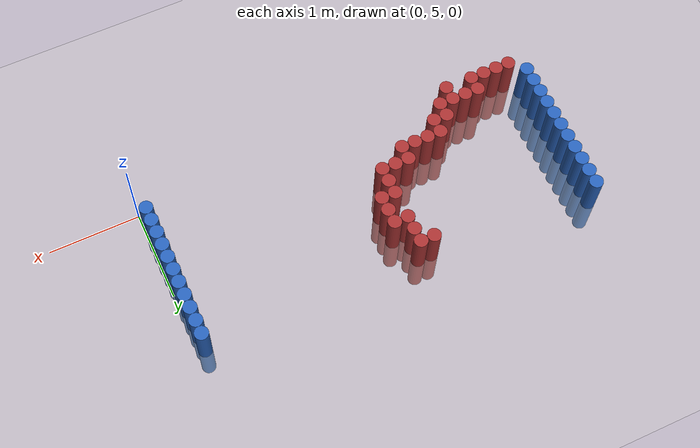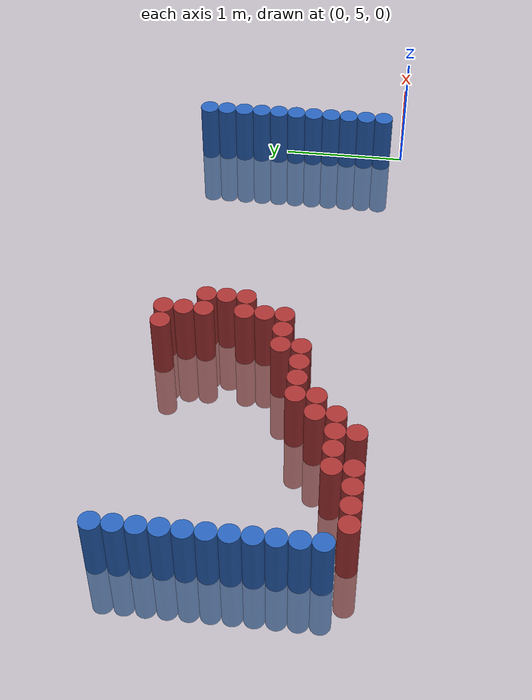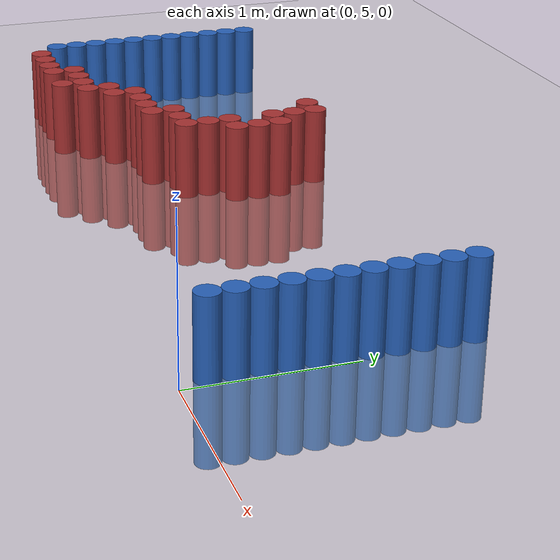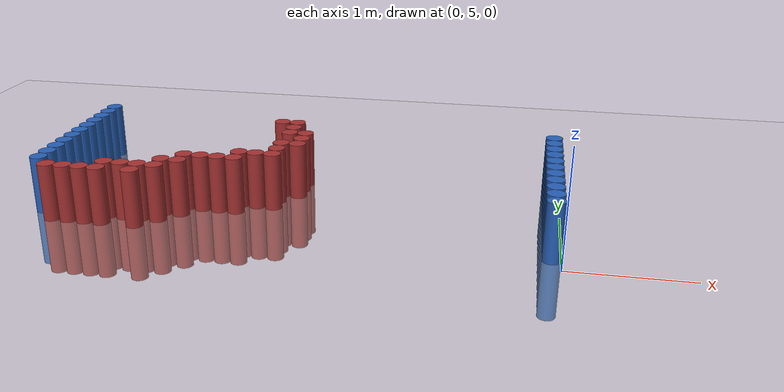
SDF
<sdf version="1.6">
 <world name="default">
  <model name="ground_plane">
   <static>1</static>
   <link name="link">
    <collision name="collision">
     <geometry><plane><normal>0 0 1</normal><size>100 100</size></plane></geometry>
     <surface><friction><ode><mu>100</mu><mu2>50</mu2></ode></friction></surface>
    </collision>
    <visual name="visual">
     <cast_shadows>0</cast_shadows>
     <geometry><plane><normal>0 0 1</normal><size>100 100</size></plane></geometry>
     <material>
      <script><uri>file://media/materials/scripts/gazebo.material</uri><name>Gazebo/Grey</name></script>
     </material>
    </visual>
   </link>
  </model>
  <model name="unit_cylinder_97">
   <static>1</static>
   <pose>-4.425000 5.325000 0.000000 0.000000 0.000000 0.000000</pose>
   <link name="link">
    <inertial>
     <mass>1</mass>
     <inertia><ixx>0.145833</ixx><ixy>0</ixy><ixz>0</ixz><iyy>0.145833</iyy><iyz>0</iyz><izz>0.125</izz></inertia>
    </inertial>
    <collision name="collision">
     <geometry><cylinder><radius>0.075000</radius><length>1</length></cylinder></geometry>
    </collision>
    <visual name="visual">
     <geometry><cylinder><radius>0.075000</radius><length>1</length></cylinder></geometry>
     <material>
      <ambient>0.152000 0.379000 0.720000 1</ambient>
      <diffuse>0.152000 0.379000 0.720000 1</diffuse>
     </material>
     <material>
      <script><name>Gazebo/Grey</name><uri>file://media/materials/scripts/gazebo.material</uri></script>
     </material>
    </visual>
   </link>
  </model>
  <model name="unit_cylinder_98">
   <static>1</static>
   <pose>-4.425000 5.475000 0.000000 0.000000 0.000000 0.000000</pose>
   <link name="link">
    <inertial>
     <mass>1</mass>
     <inertia><ixx>0.145833</ixx><ixy>0</ixy><ixz>0</ixz><iyy>0.145833</iyy><iyz>0</iyz><izz>0.125</izz></inertia>
    </inertial>
    <collision name="collision">
     <geometry><cylinder><radius>0.075000</radius><length>1</length></cylinder></geometry>
    </collision>
    <visual name="visual">
     <geometry><cylinder><radius>0.075000</radius><length>1</length></cylinder></geometry>
     <material>
      <ambient>0.152000 0.379000 0.720000 1</ambient>
      <diffuse>0.152000 0.379000 0.720000 1</diffuse>
     </material>
     <material>
      <script><name>Gazebo/Grey</name><uri>file://media/materials/scripts/gazebo.material</uri></script>
     </material>
    </visual>
   </link>
  </model>
  <model name="unit_cylinder_99">
   <static>1</static>
   <pose>-4.425000 5.625000 0.000000 0.000000 0.000000 0.000000</pose>
   <link name="link">
    <inertial>
     <mass>1</mass>
     <inertia><ixx>0.145833</ixx><ixy>0</ixy><ixz>0</ixz><iyy>0.145833</iyy><iyz>0</iyz><izz>0.125</izz></inertia>
    </inertial>
    <collision name="collision">
     <geometry><cylinder><radius>0.075000</radius><length>1</length></cylinder></geometry>
    </collision>
    <visual name="visual">
     <geometry><cylinder><radius>0.075000</radius><length>1</length></cylinder></geometry>
     <material>
      <ambient>0.152000 0.379000 0.720000 1</ambient>
      <diffuse>0.152000 0.379000 0.720000 1</diffuse>
     </material>
     <material>
      <script><name>Gazebo/Grey</name><uri>file://media/materials/scripts/gazebo.material</uri></script>
     </material>
    </visual>
   </link>
  </model>
  <model name="unit_cylinder_100">
   <static>1</static>
   <pose>-4.425000 5.775000 0.000000 0.000000 0.000000 0.000000</pose>
   <link name="link">
    <inertial>
     <mass>1</mass>
     <inertia><ixx>0.145833</ixx><ixy>0</ixy><ixz>0</ixz><iyy>0.145833</iyy><iyz>0</iyz><izz>0.125</izz></inertia>
    </inertial>
    <collision name="collision">
     <geometry><cylinder><radius>0.075000</radius><length>1</length></cylinder></geometry>
    </collision>
    <visual name="visual">
     <geometry><cylinder><radius>0.075000</radius><length>1</length></cylinder></geometry>
     <material>
      <ambient>0.152000 0.379000 0.720000 1</ambient>
      <diffuse>0.152000 0.379000 0.720000 1</diffuse>
     </material>
     <material>
      <script><name>Gazebo/Grey</name><uri>file://media/materials/scripts/gazebo.material</uri></script>
     </material>
    </visual>
   </link>
  </model>
  <model name="unit_cylinder_101">
   <static>1</static>
   <pose>-4.425000 5.925000 0.000000 0.000000 0.000000 0.000000</pose>
   <link name="link">
    <inertial>
     <mass>1</mass>
     <inertia><ixx>0.145833</ixx><ixy>0</ixy><ixz>0</ixz><iyy>0.145833</iyy><iyz>0</iyz><izz>0.125</izz></inertia>
    </inertial>
    <collision name="collision">
     <geometry><cylinder><radius>0.075000</radius><length>1</length></cylinder></geometry>
    </collision>
    <visual name="visual">
     <geometry><cylinder><radius>0.075000</radius><length>1</length></cylinder></geometry>
     <material>
      <ambient>0.152000 0.379000 0.720000 1</ambient>
      <diffuse>0.152000 0.379000 0.720000 1</diffuse>
     </material>
     <material>
      <script><name>Gazebo/Grey</name><uri>file://media/materials/scripts/gazebo.material</uri></script>
     </material>
    </visual>
   </link>
  </model>
  <model name="unit_cylinder_102">
   <static>1</static>
   <pose>-4.425000 6.075000 0.000000 0.000000 0.000000 0.000000</pose>
   <link name="link">
    <inertial>
     <mass>1</mass>
     <inertia><ixx>0.145833</ixx><ixy>0</ixy><ixz>0</ixz><iyy>0.145833</iyy><iyz>0</iyz><izz>0.125</izz></inertia>
    </inertial>
    <collision name="collision">
     <geometry><cylinder><radius>0.075000</radius><length>1</length></cylinder></geometry>
    </collision>
    <visual name="visual">
     <geometry><cylinder><radius>0.075000</radius><length>1</length></cylinder></geometry>
     <material>
      <ambient>0.152000 0.379000 0.720000 1</ambient>
      <diffuse>0.152000 0.379000 0.720000 1</diffuse>
     </material>
     <material>
      <script><name>Gazebo/Grey</name><uri>file://media/materials/scripts/gazebo.material</uri></script>
     </material>
    </visual>
   </link>
  </model>
  <model name="unit_cylinder_103">
   <static>1</static>
   <pose>-4.425000 6.225000 0.000000 0.000000 0.000000 0.000000</pose>
   <link name="link">
    <inertial>
     <mass>1</mass>
     <inertia><ixx>0.145833</ixx><ixy>0</ixy><ixz>0</ixz><iyy>0.145833</iyy><iyz>0</iyz><izz>0.125</izz></inertia>
    </inertial>
    <collision name="collision">
     <geometry><cylinder><radius>0.075000</radius><length>1</length></cylinder></geometry>
    </collision>
    <visual name="visual">
     <geometry><cylinder><radius>0.075000</radius><length>1</length></cylinder></geometry>
     <material>
      <ambient>0.152000 0.379000 0.720000 1</ambient>
      <diffuse>0.152000 0.379000 0.720000 1</diffuse>
     </material>
     <material>
      <script><name>Gazebo/Grey</name><uri>file://media/materials/scripts/gazebo.material</uri></script>
     </material>
    </visual>
   </link>
  </model>
  <model name="unit_cylinder_104">
   <static>1</static>
   <pose>-4.425000 6.375000 0.000000 0.000000 0.000000 0.000000</pose>
   <link name="link">
    <inertial>
     <mass>1</mass>
     <inertia><ixx>0.145833</ixx><ixy>0</ixy><ixz>0</ixz><iyy>0.145833</iyy><iyz>0</iyz><izz>0.125</izz></inertia>
    </inertial>
    <collision name="collision">
     <geometry><cylinder><radius>0.075000</radius><length>1</length></cylinder></geometry>
    </collision>
    <visual name="visual">
     <geometry><cylinder><radius>0.075000</radius><length>1</length></cylinder></geometry>
     <material>
      <ambient>0.152000 0.379000 0.720000 1</ambient>
      <diffuse>0.152000 0.379000 0.720000 1</diffuse>
     </material>
     <material>
      <script><name>Gazebo/Grey</name><uri>file://media/materials/scripts/gazebo.material</uri></script>
     </material>
    </visual>
   </link>
  </model>
  <model name="unit_cylinder_105">
   <static>1</static>
   <pose>-4.425000 6.525000 0.000000 0.000000 0.000000 0.000000</pose>
   <link name="link">
    <inertial>
     <mass>1</mass>
     <inertia><ixx>0.145833</ixx><ixy>0</ixy><ixz>0</ixz><iyy>0.145833</iyy><iyz>0</iyz><izz>0.125</izz></inertia>
    </inertial>
    <collision name="collision">
     <geometry><cylinder><radius>0.075000</radius><length>1</length></cylinder></geometry>
    </collision>
    <visual name="visual">
     <geometry><cylinder><radius>0.075000</radius><length>1</length></cylinder></geometry>
     <material>
      <ambient>0.152000 0.379000 0.720000 1</ambient>
      <diffuse>0.152000 0.379000 0.720000 1</diffuse>
     </material>
     <material>
      <script><name>Gazebo/Grey</name><uri>file://media/materials/scripts/gazebo.material</uri></script>
     </material>
    </visual>
   </link>
  </model>
  <model name="unit_cylinder_106">
   <static>1</static>
   <pose>-4.425000 6.675000 0.000000 0.000000 0.000000 0.000000</pose>
   <link name="link">
    <inertial>
     <mass>1</mass>
     <inertia><ixx>0.145833</ixx><ixy>0</ixy><ixz>0</ixz><iyy>0.145833</iyy><iyz>0</iyz><izz>0.125</izz></inertia>
    </inertial>
    <collision name="collision">
     <geometry><cylinder><radius>0.075000</radius><length>1</length></cylinder></geometry>
    </collision>
    <visual name="visual">
     <geometry><cylinder><radius>0.075000</radius><length>1</length></cylinder></geometry>
     <material>
      <ambient>0.152000 0.379000 0.720000 1</ambient>
      <diffuse>0.152000 0.379000 0.720000 1</diffuse>
     </material>
     <material>
      <script><name>Gazebo/Grey</name><uri>file://media/materials/scripts/gazebo.material</uri></script>
     </material>
    </visual>
   </link>
  </model>
  <model name="unit_cylinder_107">
   <static>1</static>
   <pose>-4.425000 6.825000 0.000000 0.000000 0.000000 0.000000</pose>
   <link name="link">
    <inertial>
     <mass>1</mass>
     <inertia><ixx>0.145833</ixx><ixy>0</ixy><ixz>0</ixz><iyy>0.145833</iyy><iyz>0</iyz><izz>0.125</izz></inertia>
    </inertial>
    <collision name="collision">
     <geometry><cylinder><radius>0.075000</radius><length>1</length></cylinder></geometry>
    </collision>
    <visual name="visual">
     <geometry><cylinder><radius>0.075000</radius><length>1</length></cylinder></geometry>
     <material>
      <ambient>0.152000 0.379000 0.720000 1</ambient>
      <diffuse>0.152000 0.379000 0.720000 1</diffuse>
     </material>
     <material>
      <script><name>Gazebo/Grey</name><uri>file://media/materials/scripts/gazebo.material</uri></script>
     </material>
    </visual>
   </link>
  </model>
  <model name="unit_cylinder_126">
   <static>1</static>
   <pose>-4.275000 5.175000 0.000000 0.000000 0.000000 0.000000</pose>
   <link name="link">
    <inertial>
     <mass>1</mass>
     <inertia><ixx>0.145833</ixx><ixy>0</ixy><ixz>0</ixz><iyy>0.145833</iyy><iyz>0</iyz><izz>0.125</izz></inertia>
    </inertial>
    <collision name="collision">
     <geometry><cylinder><radius>0.075000</radius><length>1</length></cylinder></geometry>
    </collision>
    <visual name="visual">
     <geometry><cylinder><radius>0.075000</radius><length>1</length></cylinder></geometry>
     <material>
      <ambient>0.648000 0.192000 0.192000 1</ambient>
      <diffuse>0.648000 0.192000 0.192000 1</diffuse>
     </material>
     <material>
      <script><name>Gazebo/Grey</name><uri>file://media/materials/scripts/gazebo.material</uri></script>
     </material>
    </visual>
   </link>
  </model>
  <model name="unit_cylinder_128">
   <static>1</static>
   <pose>-4.125000 5.175000 0.000000 0.000000 0.000000 0.000000</pose>
   <link name="link">
    <inertial>
     <mass>1</mass>
     <inertia><ixx>0.145833</ixx><ixy>0</ixy><ixz>0</ixz><iyy>0.145833</iyy><iyz>0</iyz><izz>0.125</izz></inertia>
    </inertial>
    <collision name="collision">
     <geometry><cylinder><radius>0.075000</radius><length>1</length></cylinder></geometry>
    </collision>
    <visual name="visual">
     <geometry><cylinder><radius>0.075000</radius><length>1</length></cylinder></geometry>
     <material>
      <ambient>0.648000 0.192000 0.192000 1</ambient>
      <diffuse>0.648000 0.192000 0.192000 1</diffuse>
     </material>
     <material>
      <script><name>Gazebo/Grey</name><uri>file://media/materials/scripts/gazebo.material</uri></script>
     </material>
    </visual>
   </link>
  </model>
  <model name="unit_cylinder_131">
   <static>1</static>
   <pose>-3.975000 5.175000 0.000000 0.000000 0.000000 0.000000</pose>
   <link name="link">
    <inertial>
     <mass>1</mass>
     <inertia><ixx>0.145833</ixx><ixy>0</ixy><ixz>0</ixz><iyy>0.145833</iyy><iyz>0</iyz><izz>0.125</izz></inertia>
    </inertial>
    <collision name="collision">
     <geometry><cylinder><radius>0.075000</radius><length>1</length></cylinder></geometry>
    </collision>
    <visual name="visual">
     <geometry><cylinder><radius>0.075000</radius><length>1</length></cylinder></geometry>
     <material>
      <ambient>0.648000 0.192000 0.192000 1</ambient>
      <diffuse>0.648000 0.192000 0.192000 1</diffuse>
     </material>
     <material>
      <script><name>Gazebo/Grey</name><uri>file://media/materials/scripts/gazebo.material</uri></script>
     </material>
    </visual>
   </link>
  </model>
  <model name="unit_cylinder_133">
   <static>1</static>
   <pose>-3.825000 5.175000 0.000000 0.000000 0.000000 0.000000</pose>
   <link name="link">
    <inertial>
     <mass>1</mass>
     <inertia><ixx>0.145833</ixx><ixy>0</ixy><ixz>0</ixz><iyy>0.145833</iyy><iyz>0</iyz><izz>0.125</izz></inertia>
    </inertial>
    <collision name="collision">
     <geometry><cylinder><radius>0.075000</radius><length>1</length></cylinder></geometry>
    </collision>
    <visual name="visual">
     <geometry><cylinder><radius>0.075000</radius><length>1</length></cylinder></geometry>
     <material>
      <ambient>0.648000 0.192000 0.192000 1</ambient>
      <diffuse>0.648000 0.192000 0.192000 1</diffuse>
     </material>
     <material>
      <script><name>Gazebo/Grey</name><uri>file://media/materials/scripts/gazebo.material</uri></script>
     </material>
    </visual>
   </link>
  </model>
  <model name="unit_cylinder_134">
   <static>1</static>
   <pose>-3.825000 5.325000 0.000000 0.000000 0.000000 0.000000</pose>
   <link name="link">
    <inertial>
     <mass>1</mass>
     <inertia><ixx>0.145833</ixx><ixy>0</ixy><ixz>0</ixz><iyy>0.145833</iyy><iyz>0</iyz><izz>0.125</izz></inertia>
    </inertial>
    <collision name="collision">
     <geometry><cylinder><radius>0.075000</radius><length>1</length></cylinder></geometry>
    </collision>
    <visual name="visual">
     <geometry><cylinder><radius>0.075000</radius><length>1</length></cylinder></geometry>
     <material>
      <ambient>0.648000 0.192000 0.192000 1</ambient>
      <diffuse>0.648000 0.192000 0.192000 1</diffuse>
     </material>
     <material>
      <script><name>Gazebo/Grey</name><uri>file://media/materials/scripts/gazebo.material</uri></script>
     </material>
    </visual>
   </link>
  </model>
  <model name="unit_cylinder_137">
   <static>1</static>
   <pose>-3.675000 5.325000 0.000000 0.000000 0.000000 0.000000</pose>
   <link name="link">
    <inertial>
     <mass>1</mass>
     <inertia><ixx>0.145833</ixx><ixy>0</ixy><ixz>0</ixz><iyy>0.145833</iyy><iyz>0</iyz><izz>0.125</izz></inertia>
    </inertial>
    <collision name="collision">
     <geometry><cylinder><radius>0.075000</radius><length>1</length></cylinder></geometry>
    </collision>
    <visual name="visual">
     <geometry><cylinder><radius>0.075000</radius><length>1</length></cylinder></geometry>
     <material>
      <ambient>0.648000 0.192000 0.192000 1</ambient>
      <diffuse>0.648000 0.192000 0.192000 1</diffuse>
     </material>
     <material>
      <script><name>Gazebo/Grey</name><uri>file://media/materials/scripts/gazebo.material</uri></script>
     </material>
    </visual>
   </link>
  </model>
  <model name="unit_cylinder_140">
   <static>1</static>
   <pose>-3.525000 5.175000 0.000000 0.000000 0.000000 0.000000</pose>
   <link name="link">
    <inertial>
     <mass>1</mass>
     <inertia><ixx>0.145833</ixx><ixy>0</ixy><ixz>0</ixz><iyy>0.145833</iyy><iyz>0</iyz><izz>0.125</izz></inertia>
    </inertial>
    <collision name="collision">
     <geometry><cylinder><radius>0.075000</radius><length>1</length></cylinder></geometry>
    </collision>
    <visual name="visual">
     <geometry><cylinder><radius>0.075000</radius><length>1</length></cylinder></geometry>
     <material>
      <ambient>0.648000 0.192000 0.192000 1</ambient>
      <diffuse>0.648000 0.192000 0.192000 1</diffuse>
     </material>
     <material>
      <script><name>Gazebo/Grey</name><uri>file://media/materials/scripts/gazebo.material</uri></script>
     </material>
    </visual>
   </link>
  </model>
  <model name="unit_cylinder_141">
   <static>1</static>
   <pose>-3.525000 5.325000 0.000000 0.000000 0.000000 0.000000</pose>
   <link name="link">
    <inertial>
     <mass>1</mass>
     <inertia><ixx>0.145833</ixx><ixy>0</ixy><ixz>0</ixz><iyy>0.145833</iyy><iyz>0</iyz><izz>0.125</izz></inertia>
    </inertial>
    <collision name="collision">
     <geometry><cylinder><radius>0.075000</radius><length>1</length></cylinder></geometry>
    </collision>
    <visual name="visual">
     <geometry><cylinder><radius>0.075000</radius><length>1</length></cylinder></geometry>
     <material>
      <ambient>0.648000 0.192000 0.192000 1</ambient>
      <diffuse>0.648000 0.192000 0.192000 1</diffuse>
     </material>
     <material>
      <script><name>Gazebo/Grey</name><uri>file://media/materials/scripts/gazebo.material</uri></script>
     </material>
    </visual>
   </link>
  </model>
  <model name="unit_cylinder_143">
   <static>1</static>
   <pose>-3.375000 5.325000 0.000000 0.000000 0.000000 0.000000</pose>
   <link name="link">
    <inertial>
     <mass>1</mass>
     <inertia><ixx>0.145833</ixx><ixy>0</ixy><ixz>0</ixz><iyy>0.145833</iyy><iyz>0</iyz><izz>0.125</izz></inertia>
    </inertial>
    <collision name="collision">
     <geometry><cylinder><radius>0.075000</radius><length>1</length></cylinder></geometry>
    </collision>
    <visual name="visual">
     <geometry><cylinder><radius>0.075000</radius><length>1</length></cylinder></geometry>
     <material>
      <ambient>0.648000 0.192000 0.192000 1</ambient>
      <diffuse>0.648000 0.192000 0.192000 1</diffuse>
     </material>
     <material>
      <script><name>Gazebo/Grey</name><uri>file://media/materials/scripts/gazebo.material</uri></script>
     </material>
    </visual>
   </link>
  </model>
  <model name="unit_cylinder_144">
   <static>1</static>
   <pose>-3.375000 5.475000 0.000000 0.000000 0.000000 0.000000</pose>
   <link name="link">
    <inertial>
     <mass>1</mass>
     <inertia><ixx>0.145833</ixx><ixy>0</ixy><ixz>0</ixz><iyy>0.145833</iyy><iyz>0</iyz><izz>0.125</izz></inertia>
    </inertial>
    <collision name="collision">
     <geometry><cylinder><radius>0.075000</radius><length>1</length></cylinder></geometry>
    </collision>
    <visual name="visual">
     <geometry><cylinder><radius>0.075000</radius><length>1</length></cylinder></geometry>
     <material>
      <ambient>0.648000 0.192000 0.192000 1</ambient>
      <diffuse>0.648000 0.192000 0.192000 1</diffuse>
     </material>
     <material>
      <script><name>Gazebo/Grey</name><uri>file://media/materials/scripts/gazebo.material</uri></script>
     </material>
    </visual>
   </link>
  </model>
  <model name="unit_cylinder_146">
   <static>1</static>
   <pose>-3.225000 5.475000 0.000000 0.000000 0.000000 0.000000</pose>
   <link name="link">
    <inertial>
     <mass>1</mass>
     <inertia><ixx>0.145833</ixx><ixy>0</ixy><ixz>0</ixz><iyy>0.145833</iyy><iyz>0</iyz><izz>0.125</izz></inertia>
    </inertial>
    <collision name="collision">
     <geometry><cylinder><radius>0.075000</radius><length>1</length></cylinder></geometry>
    </collision>
    <visual name="visual">
     <geometry><cylinder><radius>0.075000</radius><length>1</length></cylinder></geometry>
     <material>
      <ambient>0.648000 0.192000 0.192000 1</ambient>
      <diffuse>0.648000 0.192000 0.192000 1</diffuse>
     </material>
     <material>
      <script><name>Gazebo/Grey</name><uri>file://media/materials/scripts/gazebo.material</uri></script>
     </material>
    </visual>
   </link>
  </model>
  <model name="unit_cylinder_147">
   <static>1</static>
   <pose>-3.225000 5.625000 0.000000 0.000000 0.000000 0.000000</pose>
   <link name="link">
    <inertial>
     <mass>1</mass>
     <inertia><ixx>0.145833</ixx><ixy>0</ixy><ixz>0</ixz><iyy>0.145833</iyy><iyz>0</iyz><izz>0.125</izz></inertia>
    </inertial>
    <collision name="collision">
     <geometry><cylinder><radius>0.075000</radius><length>1</length></cylinder></geometry>
    </collision>
    <visual name="visual">
     <geometry><cylinder><radius>0.075000</radius><length>1</length></cylinder></geometry>
     <material>
      <ambient>0.648000 0.192000 0.192000 1</ambient>
      <diffuse>0.648000 0.192000 0.192000 1</diffuse>
     </material>
     <material>
      <script><name>Gazebo/Grey</name><uri>file://media/materials/scripts/gazebo.material</uri></script>
     </material>
    </visual>
   </link>
  </model>
  <model name="unit_cylinder_149">
   <static>1</static>
   <pose>-3.075000 5.625000 0.000000 0.000000 0.000000 0.000000</pose>
   <link name="link">
    <inertial>
     <mass>1</mass>
     <inertia><ixx>0.145833</ixx><ixy>0</ixy><ixz>0</ixz><iyy>0.145833</iyy><iyz>0</iyz><izz>0.125</izz></inertia>
    </inertial>
    <collision name="collision">
     <geometry><cylinder><radius>0.075000</radius><length>1</length></cylinder></geometry>
    </collision>
    <visual name="visual">
     <geometry><cylinder><radius>0.075000</radius><length>1</length></cylinder></geometry>
     <material>
      <ambient>0.648000 0.192000 0.192000 1</ambient>
      <diffuse>0.648000 0.192000 0.192000 1</diffuse>
     </material>
     <material>
      <script><name>Gazebo/Grey</name><uri>file://media/materials/scripts/gazebo.material</uri></script>
     </material>
    </visual>
   </link>
  </model>
  <model name="unit_cylinder_151">
   <static>1</static>
   <pose>-2.925000 5.625000 0.000000 0.000000 0.000000 0.000000</pose>
   <link name="link">
    <inertial>
     <mass>1</mass>
     <inertia><ixx>0.145833</ixx><ixy>0</ixy><ixz>0</ixz><iyy>0.145833</iyy><iyz>0</iyz><izz>0.125</izz></inertia>
    </inertial>
    <collision name="collision">
     <geometry><cylinder><radius>0.075000</radius><length>1</length></cylinder></geometry>
    </collision>
    <visual name="visual">
     <geometry><cylinder><radius>0.075000</radius><length>1</length></cylinder></geometry>
     <material>
      <ambient>0.648000 0.192000 0.192000 1</ambient>
      <diffuse>0.648000 0.192000 0.192000 1</diffuse>
     </material>
     <material>
      <script><name>Gazebo/Grey</name><uri>file://media/materials/scripts/gazebo.material</uri></script>
     </material>
    </visual>
   </link>
  </model>
  <model name="unit_cylinder_154">
   <static>1</static>
   <pose>-2.775000 5.625000 0.000000 0.000000 0.000000 0.000000</pose>
   <link name="link">
    <inertial>
     <mass>1</mass>
     <inertia><ixx>0.145833</ixx><ixy>0</ixy><ixz>0</ixz><iyy>0.145833</iyy><iyz>0</iyz><izz>0.125</izz></inertia>
    </inertial>
    <collision name="collision">
     <geometry><cylinder><radius>0.075000</radius><length>1</length></cylinder></geometry>
    </collision>
    <visual name="visual">
     <geometry><cylinder><radius>0.075000</radius><length>1</length></cylinder></geometry>
     <material>
      <ambient>0.648000 0.192000 0.192000 1</ambient>
      <diffuse>0.648000 0.192000 0.192000 1</diffuse>
     </material>
     <material>
      <script><name>Gazebo/Grey</name><uri>file://media/materials/scripts/gazebo.material</uri></script>
     </material>
    </visual>
   </link>
  </model>
  <model name="unit_cylinder_155">
   <static>1</static>
   <pose>-2.775000 5.775000 0.000000 0.000000 0.000000 0.000000</pose>
   <link name="link">
    <inertial>
     <mass>1</mass>
     <inertia><ixx>0.145833</ixx><ixy>0</ixy><ixz>0</ixz><iyy>0.145833</iyy><iyz>0</iyz><izz>0.125</izz></inertia>
    </inertial>
    <collision name="collision">
     <geometry><cylinder><radius>0.075000</radius><length>1</length></cylinder></geometry>
    </collision>
    <visual name="visual">
     <geometry><cylinder><radius>0.075000</radius><length>1</length></cylinder></geometry>
     <material>
      <ambient>0.648000 0.192000 0.192000 1</ambient>
      <diffuse>0.648000 0.192000 0.192000 1</diffuse>
     </material>
     <material>
      <script><name>Gazebo/Grey</name><uri>file://media/materials/scripts/gazebo.material</uri></script>
     </material>
    </visual>
   </link>
  </model>
  <model name="unit_cylinder_159">
   <static>1</static>
   <pose>-2.625000 5.775000 0.000000 0.000000 0.000000 0.000000</pose>
   <link name="link">
    <inertial>
     <mass>1</mass>
     <inertia><ixx>0.145833</ixx><ixy>0</ixy><ixz>0</ixz><iyy>0.145833</iyy><iyz>0</iyz><izz>0.125</izz></inertia>
    </inertial>
    <collision name="collision">
     <geometry><cylinder><radius>0.075000</radius><length>1</length></cylinder></geometry>
    </collision>
    <visual name="visual">
     <geometry><cylinder><radius>0.075000</radius><length>1</length></cylinder></geometry>
     <material>
      <ambient>0.648000 0.192000 0.192000 1</ambient>
      <diffuse>0.648000 0.192000 0.192000 1</diffuse>
     </material>
     <material>
      <script><name>Gazebo/Grey</name><uri>file://media/materials/scripts/gazebo.material</uri></script>
     </material>
    </visual>
   </link>
  </model>
  <model name="unit_cylinder_160">
   <static>1</static>
   <pose>-2.625000 6.675000 0.000000 0.000000 0.000000 0.000000</pose>
   <link name="link">
    <inertial>
     <mass>1</mass>
     <inertia><ixx>0.145833</ixx><ixy>0</ixy><ixz>0</ixz><iyy>0.145833</iyy><iyz>0</iyz><izz>0.125</izz></inertia>
    </inertial>
    <collision name="collision">
     <geometry><cylinder><radius>0.075000</radius><length>1</length></cylinder></geometry>
    </collision>
    <visual name="visual">
     <geometry><cylinder><radius>0.075000</radius><length>1</length></cylinder></geometry>
     <material>
      <ambient>0.648000 0.192000 0.192000 1</ambient>
      <diffuse>0.648000 0.192000 0.192000 1</diffuse>
     </material>
     <material>
      <script><name>Gazebo/Grey</name><uri>file://media/materials/scripts/gazebo.material</uri></script>
     </material>
    </visual>
   </link>
  </model>
  <model name="unit_cylinder_163">
   <static>1</static>
   <pose>-2.475000 5.775000 0.000000 0.000000 0.000000 0.000000</pose>
   <link name="link">
    <inertial>
     <mass>1</mass>
     <inertia><ixx>0.145833</ixx><ixy>0</ixy><ixz>0</ixz><iyy>0.145833</iyy><iyz>0</iyz><izz>0.125</izz></inertia>
    </inertial>
    <collision name="collision">
     <geometry><cylinder><radius>0.075000</radius><length>1</length></cylinder></geometry>
    </collision>
    <visual name="visual">
     <geometry><cylinder><radius>0.075000</radius><length>1</length></cylinder></geometry>
     <material>
      <ambient>0.648000 0.192000 0.192000 1</ambient>
      <diffuse>0.648000 0.192000 0.192000 1</diffuse>
     </material>
     <material>
      <script><name>Gazebo/Grey</name><uri>file://media/materials/scripts/gazebo.material</uri></script>
     </material>
    </visual>
   </link>
  </model>
  <model name="unit_cylinder_164">
   <static>1</static>
   <pose>-2.475000 5.925000 0.000000 0.000000 0.000000 0.000000</pose>
   <link name="link">
    <inertial>
     <mass>1</mass>
     <inertia><ixx>0.145833</ixx><ixy>0</ixy><ixz>0</ixz><iyy>0.145833</iyy><iyz>0</iyz><izz>0.125</izz></inertia>
    </inertial>
    <collision name="collision">
     <geometry><cylinder><radius>0.075000</radius><length>1</length></cylinder></geometry>
    </collision>
    <visual name="visual">
     <geometry><cylinder><radius>0.075000</radius><length>1</length></cylinder></geometry>
     <material>
      <ambient>0.648000 0.192000 0.192000 1</ambient>
      <diffuse>0.648000 0.192000 0.192000 1</diffuse>
     </material>
     <material>
      <script><name>Gazebo/Grey</name><uri>file://media/materials/scripts/gazebo.material</uri></script>
     </material>
    </visual>
   </link>
  </model>
  <model name="unit_cylinder_165">
   <static>1</static>
   <pose>-2.475000 6.075000 0.000000 0.000000 0.000000 0.000000</pose>
   <link name="link">
    <inertial>
     <mass>1</mass>
     <inertia><ixx>0.145833</ixx><ixy>0</ixy><ixz>0</ixz><iyy>0.145833</iyy><iyz>0</iyz><izz>0.125</izz></inertia>
    </inertial>
    <collision name="collision">
     <geometry><cylinder><radius>0.075000</radius><length>1</length></cylinder></geometry>
    </collision>
    <visual name="visual">
     <geometry><cylinder><radius>0.075000</radius><length>1</length></cylinder></geometry>
     <material>
      <ambient>0.648000 0.192000 0.192000 1</ambient>
      <diffuse>0.648000 0.192000 0.192000 1</diffuse>
     </material>
     <material>
      <script><name>Gazebo/Grey</name><uri>file://media/materials/scripts/gazebo.material</uri></script>
     </material>
    </visual>
   </link>
  </model>
  <model name="unit_cylinder_166">
   <static>1</static>
   <pose>-2.475000 6.375000 0.000000 0.000000 0.000000 0.000000</pose>
   <link name="link">
    <inertial>
     <mass>1</mass>
     <inertia><ixx>0.145833</ixx><ixy>0</ixy><ixz>0</ixz><iyy>0.145833</iyy><iyz>0</iyz><izz>0.125</izz></inertia>
    </inertial>
    <collision name="collision">
     <geometry><cylinder><radius>0.075000</radius><length>1</length></cylinder></geometry>
    </collision>
    <visual name="visual">
     <geometry><cylinder><radius>0.075000</radius><length>1</length></cylinder></geometry>
     <material>
      <ambient>0.648000 0.192000 0.192000 1</ambient>
      <diffuse>0.648000 0.192000 0.192000 1</diffuse>
     </material>
     <material>
      <script><name>Gazebo/Grey</name><uri>file://media/materials/scripts/gazebo.material</uri></script>
     </material>
    </visual>
   </link>
  </model>
  <model name="unit_cylinder_167">
   <static>1</static>
   <pose>-2.475000 6.525000 0.000000 0.000000 0.000000 0.000000</pose>
   <link name="link">
    <inertial>
     <mass>1</mass>
     <inertia><ixx>0.145833</ixx><ixy>0</ixy><ixz>0</ixz><iyy>0.145833</iyy><iyz>0</iyz><izz>0.125</izz></inertia>
    </inertial>
    <collision name="collision">
     <geometry><cylinder><radius>0.075000</radius><length>1</length></cylinder></geometry>
    </collision>
    <visual name="visual">
     <geometry><cylinder><radius>0.075000</radius><length>1</length></cylinder></geometry>
     <material>
      <ambient>0.648000 0.192000 0.192000 1</ambient>
      <diffuse>0.648000 0.192000 0.192000 1</diffuse>
     </material>
     <material>
      <script><name>Gazebo/Grey</name><uri>file://media/materials/scripts/gazebo.material</uri></script>
     </material>
    </visual>
   </link>
  </model>
  <model name="unit_cylinder_168">
   <static>1</static>
   <pose>-2.475000 6.675000 0.000000 0.000000 0.000000 0.000000</pose>
   <link name="link">
    <inertial>
     <mass>1</mass>
     <inertia><ixx>0.145833</ixx><ixy>0</ixy><ixz>0</ixz><iyy>0.145833</iyy><iyz>0</iyz><izz>0.125</izz></inertia>
    </inertial>
    <collision name="collision">
     <geometry><cylinder><radius>0.075000</radius><length>1</length></cylinder></geometry>
    </collision>
    <visual name="visual">
     <geometry><cylinder><radius>0.075000</radius><length>1</length></cylinder></geometry>
     <material>
      <ambient>0.648000 0.192000 0.192000 1</ambient>
      <diffuse>0.648000 0.192000 0.192000 1</diffuse>
     </material>
     <material>
      <script><name>Gazebo/Grey</name><uri>file://media/materials/scripts/gazebo.material</uri></script>
     </material>
    </visual>
   </link>
  </model>
  <model name="unit_cylinder_169">
   <static>1</static>
   <pose>-2.325000 6.075000 0.000000 0.000000 0.000000 0.000000</pose>
   <link name="link">
    <inertial>
     <mass>1</mass>
     <inertia><ixx>0.145833</ixx><ixy>0</ixy><ixz>0</ixz><iyy>0.145833</iyy><iyz>0</iyz><izz>0.125</izz></inertia>
    </inertial>
    <collision name="collision">
     <geometry><cylinder><radius>0.075000</radius><length>1</length></cylinder></geometry>
    </collision>
    <visual name="visual">
     <geometry><cylinder><radius>0.075000</radius><length>1</length></cylinder></geometry>
     <material>
      <ambient>0.648000 0.192000 0.192000 1</ambient>
      <diffuse>0.648000 0.192000 0.192000 1</diffuse>
     </material>
     <material>
      <script><name>Gazebo/Grey</name><uri>file://media/materials/scripts/gazebo.material</uri></script>
     </material>
    </visual>
   </link>
  </model>
  <model name="unit_cylinder_170">
   <static>1</static>
   <pose>-2.325000 6.225000 0.000000 0.000000 0.000000 0.000000</pose>
   <link name="link">
    <inertial>
     <mass>1</mass>
     <inertia><ixx>0.145833</ixx><ixy>0</ixy><ixz>0</ixz><iyy>0.145833</iyy><iyz>0</iyz><izz>0.125</izz></inertia>
    </inertial>
    <collision name="collision">
     <geometry><cylinder><radius>0.075000</radius><length>1</length></cylinder></geometry>
    </collision>
    <visual name="visual">
     <geometry><cylinder><radius>0.075000</radius><length>1</length></cylinder></geometry>
     <material>
      <ambient>0.648000 0.192000 0.192000 1</ambient>
      <diffuse>0.648000 0.192000 0.192000 1</diffuse>
     </material>
     <material>
      <script><name>Gazebo/Grey</name><uri>file://media/materials/scripts/gazebo.material</uri></script>
     </material>
    </visual>
   </link>
  </model>
  <model name="unit_cylinder_171">
   <static>1</static>
   <pose>-2.325000 6.375000 0.000000 0.000000 0.000000 0.000000</pose>
   <link name="link">
    <inertial>
     <mass>1</mass>
     <inertia><ixx>0.145833</ixx><ixy>0</ixy><ixz>0</ixz><iyy>0.145833</iyy><iyz>0</iyz><izz>0.125</izz></inertia>
    </inertial>
    <collision name="collision">
     <geometry><cylinder><radius>0.075000</radius><length>1</length></cylinder></geometry>
    </collision>
    <visual name="visual">
     <geometry><cylinder><radius>0.075000</radius><length>1</length></cylinder></geometry>
     <material>
      <ambient>0.648000 0.192000 0.192000 1</ambient>
      <diffuse>0.648000 0.192000 0.192000 1</diffuse>
     </material>
     <material>
      <script><name>Gazebo/Grey</name><uri>file://media/materials/scripts/gazebo.material</uri></script>
     </material>
    </visual>
   </link>
  </model>
  <model name="unit_cylinder_213">
   <static>1</static>
   <pose>-0.075000 5.175000 0.000000 0.000000 0.000000 0.000000</pose>
   <link name="link">
    <inertial>
     <mass>1</mass>
     <inertia><ixx>0.145833</ixx><ixy>0</ixy><ixz>0</ixz><iyy>0.145833</iyy><iyz>0</iyz><izz>0.125</izz></inertia>
    </inertial>
    <collision name="collision">
     <geometry><cylinder><radius>0.075000</radius><length>1</length></cylinder></geometry>
    </collision>
    <visual name="visual">
     <geometry><cylinder><radius>0.075000</radius><length>1</length></cylinder></geometry>
     <material>
      <ambient>0.152000 0.379000 0.720000 1</ambient>
      <diffuse>0.152000 0.379000 0.720000 1</diffuse>
     </material>
     <material>
      <script><name>Gazebo/Grey</name><uri>file://media/materials/scripts/gazebo.material</uri></script>
     </material>
    </visual>
   </link>
  </model>
  <model name="unit_cylinder_214">
   <static>1</static>
   <pose>-0.075000 5.325000 0.000000 0.000000 0.000000 0.000000</pose>
   <link name="link">
    <inertial>
     <mass>1</mass>
     <inertia><ixx>0.145833</ixx><ixy>0</ixy><ixz>0</ixz><iyy>0.145833</iyy><iyz>0</iyz><izz>0.125</izz></inertia>
    </inertial>
    <collision name="collision">
     <geometry><cylinder><radius>0.075000</radius><length>1</length></cylinder></geometry>
    </collision>
    <visual name="visual">
     <geometry><cylinder><radius>0.075000</radius><length>1</length></cylinder></geometry>
     <material>
      <ambient>0.152000 0.379000 0.720000 1</ambient>
      <diffuse>0.152000 0.379000 0.720000 1</diffuse>
     </material>
     <material>
      <script><name>Gazebo/Grey</name><uri>file://media/materials/scripts/gazebo.material</uri></script>
     </material>
    </visual>
   </link>
  </model>
  <model name="unit_cylinder_215">
   <static>1</static>
   <pose>-0.075000 5.475000 0.000000 0.000000 0.000000 0.000000</pose>
   <link name="link">
    <inertial>
     <mass>1</mass>
     <inertia><ixx>0.145833</ixx><ixy>0</ixy><ixz>0</ixz><iyy>0.145833</iyy><iyz>0</iyz><izz>0.125</izz></inertia>
    </inertial>
    <collision name="collision">
     <geometry><cylinder><radius>0.075000</radius><length>1</length></cylinder></geometry>
    </collision>
    <visual name="visual">
     <geometry><cylinder><radius>0.075000</radius><length>1</length></cylinder></geometry>
     <material>
      <ambient>0.152000 0.379000 0.720000 1</ambient>
      <diffuse>0.152000 0.379000 0.720000 1</diffuse>
     </material>
     <material>
      <script><name>Gazebo/Grey</name><uri>file://media/materials/scripts/gazebo.material</uri></script>
     </material>
    </visual>
   </link>
  </model>
  <model name="unit_cylinder_216">
   <static>1</static>
   <pose>-0.075000 5.625000 0.000000 0.000000 0.000000 0.000000</pose>
   <link name="link">
    <inertial>
     <mass>1</mass>
     <inertia><ixx>0.145833</ixx><ixy>0</ixy><ixz>0</ixz><iyy>0.145833</iyy><iyz>0</iyz><izz>0.125</izz></inertia>
    </inertial>
    <collision name="collision">
     <geometry><cylinder><radius>0.075000</radius><length>1</length></cylinder></geometry>
    </collision>
    <visual name="visual">
     <geometry><cylinder><radius>0.075000</radius><length>1</length></cylinder></geometry>
     <material>
      <ambient>0.152000 0.379000 0.720000 1</ambient>
      <diffuse>0.152000 0.379000 0.720000 1</diffuse>
     </material>
     <material>
      <script><name>Gazebo/Grey</name><uri>file://media/materials/scripts/gazebo.material</uri></script>
     </material>
    </visual>
   </link>
  </model>
  <model name="unit_cylinder_217">
   <static>1</static>
   <pose>-0.075000 5.775000 0.000000 0.000000 0.000000 0.000000</pose>
   <link name="link">
    <inertial>
     <mass>1</mass>
     <inertia><ixx>0.145833</ixx><ixy>0</ixy><ixz>0</ixz><iyy>0.145833</iyy><iyz>0</iyz><izz>0.125</izz></inertia>
    </inertial>
    <collision name="collision">
     <geometry><cylinder><radius>0.075000</radius><length>1</length></cylinder></geometry>
    </collision>
    <visual name="visual">
     <geometry><cylinder><radius>0.075000</radius><length>1</length></cylinder></geometry>
     <material>
      <ambient>0.152000 0.379000 0.720000 1</ambient>
      <diffuse>0.152000 0.379000 0.720000 1</diffuse>
     </material>
     <material>
      <script><name>Gazebo/Grey</name><uri>file://media/materials/scripts/gazebo.material</uri></script>
     </material>
    </visual>
   </link>
  </model>
  <model name="unit_cylinder_218">
   <static>1</static>
   <pose>-0.075000 5.925000 0.000000 0.000000 0.000000 0.000000</pose>
   <link name="link">
    <inertial>
     <mass>1</mass>
     <inertia><ixx>0.145833</ixx><ixy>0</ixy><ixz>0</ixz><iyy>0.145833</iyy><iyz>0</iyz><izz>0.125</izz></inertia>
    </inertial>
    <collision name="collision">
     <geometry><cylinder><radius>0.075000</radius><length>1</length></cylinder></geometry>
    </collision>
    <visual name="visual">
     <geometry><cylinder><radius>0.075000</radius><length>1</length></cylinder></geometry>
     <material>
      <ambient>0.152000 0.379000 0.720000 1</ambient>
      <diffuse>0.152000 0.379000 0.720000 1</diffuse>
     </material>
     <material>
      <script><name>Gazebo/Grey</name><uri>file://media/materials/scripts/gazebo.material</uri></script>
     </material>
    </visual>
   </link>
  </model>
  <model name="unit_cylinder_219">
   <static>1</static>
   <pose>-0.075000 6.075000 0.000000 0.000000 0.000000 0.000000</pose>
   <link name="link">
    <inertial>
     <mass>1</mass>
     <inertia><ixx>0.145833</ixx><ixy>0</ixy><ixz>0</ixz><iyy>0.145833</iyy><iyz>0</iyz><izz>0.125</izz></inertia>
    </inertial>
    <collision name="collision">
     <geometry><cylinder><radius>0.075000</radius><length>1</length></cylinder></geometry>
    </collision>
    <visual name="visual">
     <geometry><cylinder><radius>0.075000</radius><length>1</length></cylinder></geometry>
     <material>
      <ambient>0.152000 0.379000 0.720000 1</ambient>
      <diffuse>0.152000 0.379000 0.720000 1</diffuse>
     </material>
     <material>
      <script><name>Gazebo/Grey</name><uri>file://media/materials/scripts/gazebo.material</uri></script>
     </material>
    </visual>
   </link>
  </model>
  <model name="unit_cylinder_220">
   <static>1</static>
   <pose>-0.075000 6.225000 0.000000 0.000000 0.000000 0.000000</pose>
   <link name="link">
    <inertial>
     <mass>1</mass>
     <inertia><ixx>0.145833</ixx><ixy>0</ixy><ixz>0</ixz><iyy>0.145833</iyy><iyz>0</iyz><izz>0.125</izz></inertia>
    </inertial>
    <collision name="collision">
     <geometry><cylinder><radius>0.075000</radius><length>1</length></cylinder></geometry>
    </collision>
    <visual name="visual">
     <geometry><cylinder><radius>0.075000</radius><length>1</length></cylinder></geometry>
     <material>
      <ambient>0.152000 0.379000 0.720000 1</ambient>
      <diffuse>0.152000 0.379000 0.720000 1</diffuse>
     </material>
     <material>
      <script><name>Gazebo/Grey</name><uri>file://media/materials/scripts/gazebo.material</uri></script>
     </material>
    </visual>
   </link>
  </model>
  <model name="unit_cylinder_221">
   <static>1</static>
   <pose>-0.075000 6.375000 0.000000 0.000000 0.000000 0.000000</pose>
   <link name="link">
    <inertial>
     <mass>1</mass>
     <inertia><ixx>0.145833</ixx><ixy>0</ixy><ixz>0</ixz><iyy>0.145833</iyy><iyz>0</iyz><izz>0.125</izz></inertia>
    </inertial>
    <collision name="collision">
     <geometry><cylinder><radius>0.075000</radius><length>1</length></cylinder></geometry>
    </collision>
    <visual name="visual">
     <geometry><cylinder><radius>0.075000</radius><length>1</length></cylinder></geometry>
     <material>
      <ambient>0.152000 0.379000 0.720000 1</ambient>
      <diffuse>0.152000 0.379000 0.720000 1</diffuse>
     </material>
     <material>
      <script><name>Gazebo/Grey</name><uri>file://media/materials/scripts/gazebo.material</uri></script>
     </material>
    </visual>
   </link>
  </model>
  <model name="unit_cylinder_222">
   <static>1</static>
   <pose>-0.075000 6.525000 0.000000 0.000000 0.000000 0.000000</pose>
   <link name="link">
    <inertial>
     <mass>1</mass>
     <inertia><ixx>0.145833</ixx><ixy>0</ixy><ixz>0</ixz><iyy>0.145833</iyy><iyz>0</iyz><izz>0.125</izz></inertia>
    </inertial>
    <collision name="collision">
     <geometry><cylinder><radius>0.075000</radius><length>1</length></cylinder></geometry>
    </collision>
    <visual name="visual">
     <geometry><cylinder><radius>0.075000</radius><length>1</length></cylinder></geometry>
     <material>
      <ambient>0.152000 0.379000 0.720000 1</ambient>
      <diffuse>0.152000 0.379000 0.720000 1</diffuse>
     </material>
     <material>
      <script><name>Gazebo/Grey</name><uri>file://media/materials/scripts/gazebo.material</uri></script>
     </material>
    </visual>
   </link>
  </model>
  <model name="unit_cylinder_223">
   <static>1</static>
   <pose>-0.075000 6.675000 0.000000 0.000000 0.000000 0.000000</pose>
   <link name="link">
    <inertial>
     <mass>1</mass>
     <inertia><ixx>0.145833</ixx><ixy>0</ixy><ixz>0</ixz><iyy>0.145833</iyy><iyz>0</iyz><izz>0.125</izz></inertia>
    </inertial>
    <collision name="collision">
     <geometry><cylinder><radius>0.075000</radius><length>1</length></cylinder></geometry>
    </collision>
    <visual name="visual">
     <geometry><cylinder><radius>0.075000</radius><length>1</length></cylinder></geometry>
     <material>
      <ambient>0.152000 0.379000 0.720000 1</ambient>
      <diffuse>0.152000 0.379000 0.720000 1</diffuse>
     </material>
     <material>
      <script><name>Gazebo/Grey</name><uri>file://media/materials/scripts/gazebo.material</uri></script>
     </material>
    </visual>
   </link>
  </model>
 </world>
</sdf>
